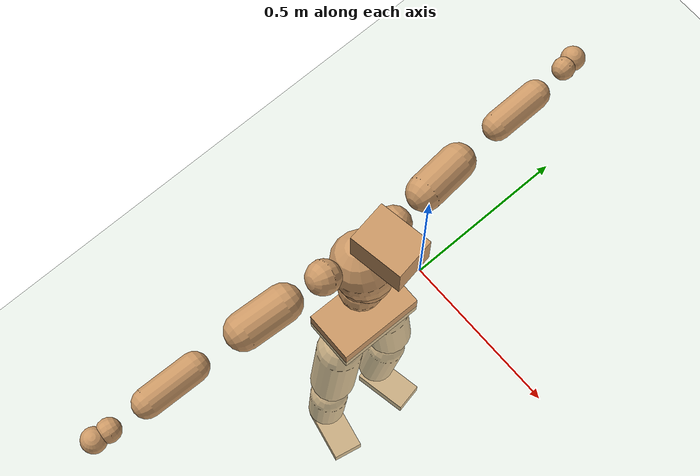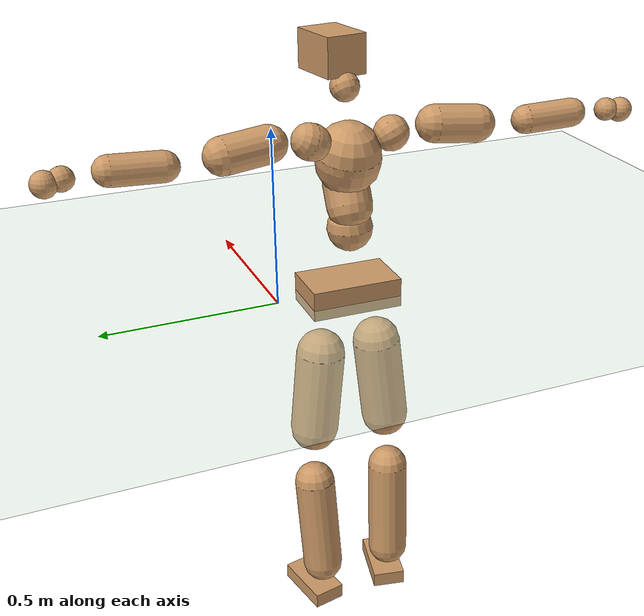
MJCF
<mujoco model="humanoid">
  <compiler coordinate="local" angle="radian"/>
  <default>
    <joint damping="0.0" armature="0.01" stiffness="0.0" limited="true"/>
    <geom conaffinity="1" condim="3" contype="7" margin="0.001" rgba="0.8 0.6 .4 1"/>
  </default>
  <asset>
    <texture type="skybox" builtin="gradient" rgb1=".4 .5 .6" rgb2="0 0 0" width="100" height="100"/>
    <texture builtin="flat" height="1278" mark="cross" markrgb="1 1 1" name="texgeom" random="0.01" rgb1="0.8 0.6 0.4" rgb2="0.8 0.6 0.4" type="cube" width="127"/>
    <texture builtin="checker" height="100" name="texplane" rgb1="0 0 0" rgb2="0.8 0.8 0.8" type="2d" width="100"/>
    <material name="MatPlane" reflectance="0.5" shininess="1" specular="1" texrepeat="60 60" texture="texplane"/>
    <material name="geom" texture="texgeom" texuniform="true"/>
  </asset>
  <worldbody>
    <light cutoff="100" diffuse="1 1 1" dir="-0 0 -1.3" directional="true" exponent="1" pos="0 0 1.3" specular=".1 .1 .1"/>
    <geom conaffinity="1" condim="3" name="floor" pos="0 0 0" rgba="0.8 0.9 0.8 1" size="100 100 .2" type="plane" material="MatPlane"/>
    <body name="Pelvis" pos="0.002 -0.2089 0.0216">
      <freejoint name="Pelvis"/>
      <geom type="box" contype="1" conaffinity="1" density="5359.375208" pos="-0.0077 0.0001 -0.0135" size="0.0783 0.131 0.0419" quat="1.0000 0.0000 0.0000 -0.0074" name="Pelvis"/>
      <body name="L_Hip" pos="-0.0157 0.0801 -0.0974">
        <joint name="L_Hip_x" type="hinge" pos="0 0 0" axis="1 0 0" stiffness="1600" damping="160" armature="0.02" range="-180.0000 180.0000"/>
        <joint name="L_Hip_y" type="hinge" pos="0 0 0" axis="0 1 0" stiffness="1600" damping="160" armature="0.02" range="-180.0000 180.0000"/>
        <joint name="L_Hip_z" type="hinge" pos="0 0 0" axis="0 0 1" stiffness="1600" damping="160" armature="0.02" range="-180.0000 180.0000"/>
        <geom type="capsule" contype="1" conaffinity="1" density="2040.816327" size="0.0705" fromto="0.0004 0.0098 -0.1000 0.0012 0.0344 -0.3492" name="L_Hip"/>
        <body name="L_Knee" pos="0.0016 0.0442 -0.4492">
          <joint name="L_Knee_x" type="hinge" pos="0 0 0" axis="1 0 0" stiffness="1600" damping="160" armature="0.02" range="-180.0000 180.0000"/>
          <joint name="L_Knee_y" type="hinge" pos="0 0 0" axis="0 1 0" stiffness="1600" damping="160" armature="0.02" range="-180.0000 180.0000"/>
          <joint name="L_Knee_z" type="hinge" pos="0 0 0" axis="0 0 1" stiffness="1600" damping="160" armature="0.02" range="-180.0000 180.0000"/>
          <geom type="capsule" contype="1" conaffinity="1" density="1234.567901" size="0.0608" fromto="-0.0102 -0.0026 -0.0902 -0.0434 -0.0108 -0.3814" name="L_Knee"/>
          <body name="L_Ankle" pos="-0.0536 -0.0134 -0.4715">
            <joint name="L_Ankle_x" type="hinge" pos="0 0 0" axis="1 0 0" stiffness="1600" damping="160" armature="0.02" range="-180.0000 180.0000"/>
            <joint name="L_Ankle_y" type="hinge" pos="0 0 0" axis="0 1 0" stiffness="1600" damping="160" armature="0.02" range="-180.0000 180.0000"/>
            <joint name="L_Ankle_z" type="hinge" pos="0 0 0" axis="0 0 1" stiffness="1600" damping="160" armature="0.02" range="-180.0000 180.0000"/>
            <geom type="box" contype="1" conaffinity="1" density="999.999941" pos="0.0654 0.0128 -0.0322" size="0.0922 0.0479 0.0233" quat="0.9953 0.0000 0.0000 0.0967" name="L_Ankle"/>
            <body name="L_Toe" pos="0.1307 0.0256 -0.0645">
              <joint name="L_Toe_x" type="hinge" pos="0 0 0" axis="1 0 0" stiffness="1000" damping="100" armature="0.02" range="-180.0000 180.0000"/>
              <joint name="L_Toe_y" type="hinge" pos="0 0 0" axis="0 1 0" stiffness="1000" damping="100" armature="0.02" range="-180.0000 180.0000"/>
              <joint name="L_Toe_z" type="hinge" pos="0 0 0" axis="0 0 1" stiffness="1000" damping="100" armature="0.02" range="-180.0000 180.0000"/>
              <geom type="box" contype="1" conaffinity="1" density="8967879.660564" pos="0.0000 0.0000 0.0329" size="0.0009 0.0024 0.0012" quat="0.9947 0.0000 0.0000 0.1025" name="L_Toe"/>
            </body>
          </body>
        </body>
      </body>
      <body name="R_Hip" pos="-0.0114 -0.0768 -0.0948">
        <joint name="R_Hip_x" type="hinge" pos="0 0 0" axis="1 0 0" stiffness="1600" damping="160" armature="0.02" range="-180.0000 180.0000"/>
        <joint name="R_Hip_y" type="hinge" pos="0 0 0" axis="0 1 0" stiffness="1600" damping="160" armature="0.02" range="-180.0000 180.0000"/>
        <joint name="R_Hip_z" type="hinge" pos="0 0 0" axis="0 0 1" stiffness="1600" damping="160" armature="0.02" range="-180.0000 180.0000"/>
        <geom type="capsule" contype="1" conaffinity="1" density="2040.816327" size="0.0694" fromto="-0.0006 -0.0110 -0.0988 -0.0020 -0.0401 -0.3595" name="R_Hip"/>
        <body name="R_Knee" pos="-0.0026 -0.0511 -0.4583">
          <joint name="R_Knee_x" type="hinge" pos="0 0 0" axis="1 0 0" stiffness="1600" damping="160" armature="0.02" range="-180.0000 180.0000"/>
          <joint name="R_Knee_y" type="hinge" pos="0 0 0" axis="0 1 0" stiffness="1600" damping="160" armature="0.02" range="-180.0000 180.0000"/>
          <joint name="R_Knee_z" type="hinge" pos="0 0 0" axis="0 0 1" stiffness="1600" damping="160" armature="0.02" range="-180.0000 180.0000"/>
          <geom type="capsule" contype="1" conaffinity="1" density="1234.567901" size="0.061" fromto="-0.0099 0.0033 -0.0904 -0.0417 0.0139 -0.3817" name="R_Knee"/>
          <body name="R_Ankle" pos="-0.0515 0.0172 -0.4721">
            <joint name="R_Ankle_x" type="hinge" pos="0 0 0" axis="1 0 0" stiffness="1600" damping="160" armature="0.02" range="-180.0000 180.0000"/>
            <joint name="R_Ankle_y" type="hinge" pos="0 0 0" axis="0 1 0" stiffness="1600" damping="160" armature="0.02" range="-180.0000 180.0000"/>
            <joint name="R_Ankle_z" type="hinge" pos="0 0 0" axis="0 0 1" stiffness="1600" damping="160" armature="0.02" range="-180.0000 180.0000"/>
            <geom type="box" contype="1" conaffinity="1" density="999.999989" pos="0.0672 -0.0141 -0.0281" size="0.0937 0.0493 0.023" quat="0.9947 0.0000 0.0000 -0.1030" name="R_Ankle"/>
            <body name="R_Toe" pos="0.1345 -0.0282 -0.0562">
              <joint name="R_Toe_x" type="hinge" pos="0 0 0" axis="1 0 0" stiffness="1000" damping="100" armature="0.02" range="-180.0000 180.0000"/>
              <joint name="R_Toe_y" type="hinge" pos="0 0 0" axis="0 1 0" stiffness="1000" damping="100" armature="0.02" range="-180.0000 180.0000"/>
              <joint name="R_Toe_z" type="hinge" pos="0 0 0" axis="0 0 1" stiffness="1000" damping="100" armature="0.02" range="-180.0000 180.0000"/>
              <geom type="box" contype="1" conaffinity="1" density="8814138.006525" pos="0.0000 0.0000 0.0305" size="0.0008 0.0024 0.0013" quat="0.9955 0.0000 0.0000 -0.0946" name="R_Toe"/>
            </body>
          </body>
        </body>
      </body>
      <body name="Torso" pos="-0.019 -0.0027 0.1111">
        <joint name="Torso_x" type="hinge" pos="0 0 0" axis="1 0 0" stiffness="2000" damping="200" armature="0.02" range="-180.0000 180.0000"/>
        <joint name="Torso_y" type="hinge" pos="0 0 0" axis="0 1 0" stiffness="2000" damping="200" armature="0.02" range="-180.0000 180.0000"/>
        <joint name="Torso_z" type="hinge" pos="0 0 0" axis="0 0 1" stiffness="2000" damping="200" armature="0.02" range="-180.0000 180.0000"/>
        <geom type="capsule" contype="1" conaffinity="1" density="2040.816327" size="0.0641" fromto="-0.0019 0.0015 0.0680 -0.0019 0.0016 0.0700" name="Torso"/>
        <body name="Spine" pos="-0.0038 0.0031 0.1381">
          <joint name="Spine_x" type="hinge" pos="0 0 0" axis="1 0 0" stiffness="2000" damping="200" armature="0.02" range="-180.0000 180.0000"/>
          <joint name="Spine_y" type="hinge" pos="0 0 0" axis="0 1 0" stiffness="2000" damping="200" armature="0.02" range="-180.0000 180.0000"/>
          <joint name="Spine_z" type="hinge" pos="0 0 0" axis="0 0 1" stiffness="2000" damping="200" armature="0.02" range="-180.0000 180.0000"/>
          <geom type="capsule" contype="1" conaffinity="1" density="2040.816327" size="0.0638" fromto="0.0288 0.0000 0.0569 -0.0028 -0.0000 -0.0055" name="Spine"/>
          <body name="Chest" pos="0.0261 0 0.0514">
            <joint name="Chest_x" type="hinge" pos="0 0 0" axis="1 0 0" stiffness="2000" damping="200" armature="0.02" range="-180.0000 180.0000"/>
            <joint name="Chest_y" type="hinge" pos="0 0 0" axis="0 1 0" stiffness="2000" damping="200" armature="0.02" range="-180.0000 180.0000"/>
            <joint name="Chest_z" type="hinge" pos="0 0 0" axis="0 0 1" stiffness="2000" damping="200" armature="0.02" range="-180.0000 180.0000"/>
            <geom type="capsule" contype="1" conaffinity="1" density="2040.816327" size="0.0901" fromto="-0.0201 -0.0011 0.0878 -0.0151 -0.0008 0.0661" name="Chest"/>
            <body name="Neck" pos="-0.0324 -0.0032 0.2253">
              <joint name="Neck_x" type="hinge" pos="0 0 0" axis="1 0 0" stiffness="1000" damping="100" armature="0.02" range="-180.0000 180.0000"/>
              <joint name="Neck_y" type="hinge" pos="0 0 0" axis="0 1 0" stiffness="1000" damping="100" armature="0.02" range="-180.0000 180.0000"/>
              <joint name="Neck_z" type="hinge" pos="0 0 0" axis="0 0 1" stiffness="1000" damping="100" armature="0.02" range="-180.0000 180.0000"/>
              <geom type="capsule" contype="1" conaffinity="1" density="1000" size="0.0399" fromto="0.0306 0.0041 0.0386 0.0318 0.0043 0.0402" name="Neck"/>
              <body name="Head" pos="0.0624 0.0084 0.0787">
                <joint name="Head_x" type="hinge" pos="0 0 0" axis="1 0 0" stiffness="1000" damping="100" armature="0.02" range="-180.0000 180.0000"/>
                <joint name="Head_y" type="hinge" pos="0 0 0" axis="0 1 0" stiffness="1000" damping="100" armature="0.02" range="-180.0000 180.0000"/>
                <joint name="Head_z" type="hinge" pos="0 0 0" axis="0 0 1" stiffness="1000" damping="100" armature="0.02" range="-180.0000 180.0000"/>
                <geom type="box" contype="1" conaffinity="1" density="2250.000057" pos="0.0322 0.0052 0.0404" size="0.0765 0.0579 0.053" quat="0.9968 0.0000 0.0000 0.0801" name="Head"/>
              </body>
            </body>
            <body name="L_Thorax" pos="-0.033 0.0704 0.119">
              <joint name="L_Thorax_x" type="hinge" pos="0 0 0" axis="1 0 0" stiffness="1000" damping="100" armature="0.02" range="-180.0000 180.0000"/>
              <joint name="L_Thorax_y" type="hinge" pos="0 0 0" axis="0 1 0" stiffness="1000" damping="100" armature="0.02" range="-180.0000 180.0000"/>
              <joint name="L_Thorax_z" type="hinge" pos="0 0 0" axis="0 0 1" stiffness="1000" damping="100" armature="0.02" range="-180.0000 180.0000"/>
              <geom type="capsule" contype="1" conaffinity="1" density="1000" size="0.0495" fromto="-0.0019 0.0444 0.0217 -0.0015 0.0353 0.0173" name="L_Thorax"/>
              <body name="L_Shoulder" pos="-0.0034 0.0797 0.039">
                <joint name="L_Shoulder_x" type="hinge" pos="0 0 0" axis="1 0 0" stiffness="1000" damping="100" armature="0.02" range="-720.0000 720.0000"/>
                <joint name="L_Shoulder_y" type="hinge" pos="0 0 0" axis="0 1 0" stiffness="1000" damping="100" armature="0.02" range="-720.0000 720.0000"/>
                <joint name="L_Shoulder_z" type="hinge" pos="0 0 0" axis="0 0 1" stiffness="1000" damping="100" armature="0.02" range="-720.0000 720.0000"/>
                <geom type="capsule" contype="1" conaffinity="1" density="1000" size="0.0508" fromto="-0.0083 0.0801 -0.0071 -0.0214 0.2057 -0.0181" name="L_Shoulder"/>
                <body name="L_Elbow" pos="-0.0297 0.2858 -0.0252">
                  <joint name="L_Elbow_x" type="hinge" pos="0 0 0" axis="1 0 0" stiffness="1000" damping="100" armature="0.02" range="-720.0000 720.0000"/>
                  <joint name="L_Elbow_y" type="hinge" pos="0 0 0" axis="0 1 0" stiffness="1000" damping="100" armature="0.02" range="-720.0000 720.0000"/>
                  <joint name="L_Elbow_z" type="hinge" pos="0 0 0" axis="0 0 1" stiffness="1000" damping="100" armature="0.02" range="-720.0000 720.0000"/>
                  <geom type="capsule" contype="1" conaffinity="1" density="1000" size="0.0398" fromto="-0.0000 0.0697 0.0034 -0.0000 0.2056 0.0101" name="L_Elbow"/>
                  <body name="L_Wrist" pos="0 0.2754 0.0135">
                    <joint name="L_Wrist_x" type="hinge" pos="0 0 0" axis="1 0 0" stiffness="600" damping="60" armature="0.02" range="-180.0000 180.0000"/>
                    <joint name="L_Wrist_y" type="hinge" pos="0 0 0" axis="0 1 0" stiffness="600" damping="60" armature="0.02" range="-180.0000 180.0000"/>
                    <joint name="L_Wrist_z" type="hinge" pos="0 0 0" axis="0 0 1" stiffness="600" damping="60" armature="0.02" range="-180.0000 180.0000"/>
                    <geom type="capsule" contype="1" conaffinity="1" density="1000" size="0.0312" fromto="-0.0070 0.0409 -0.0052 -0.0073 0.0429 -0.0055" name="L_Wrist"/>
                    <body name="L_Hand" pos="-0.0143 0.0838 -0.0107">
                      <joint name="L_Hand_x" type="hinge" pos="0 0 0" axis="1 0 0" stiffness="600" damping="60" armature="0.02" range="-180.0000 180.0000"/>
                      <joint name="L_Hand_y" type="hinge" pos="0 0 0" axis="0 1 0" stiffness="600" damping="60" armature="0.02" range="-180.0000 180.0000"/>
                      <joint name="L_Hand_z" type="hinge" pos="0 0 0" axis="0 0 1" stiffness="600" damping="60" armature="0.02" range="-180.0000 180.0000"/>
                      <geom type="sphere" contype="1" conaffinity="1" density="1000" size="0.0336" pos="0.0000 0.0000 0.0000" name="L_Hand"/>
                    </body>
                  </body>
                </body>
              </body>
            </body>
            <body name="R_Thorax" pos="-0.0402 -0.0728 0.1173">
              <joint name="R_Thorax_x" type="hinge" pos="0 0 0" axis="1 0 0" stiffness="1000" damping="100" armature="0.02" range="-180.0000 180.0000"/>
              <joint name="R_Thorax_y" type="hinge" pos="0 0 0" axis="0 1 0" stiffness="1000" damping="100" armature="0.02" range="-180.0000 180.0000"/>
              <joint name="R_Thorax_z" type="hinge" pos="0 0 0" axis="0 0 1" stiffness="1000" damping="100" armature="0.02" range="-180.0000 180.0000"/>
              <geom type="capsule" contype="1" conaffinity="1" density="1000" size="0.0483" fromto="-0.0024 -0.0433 0.0211 -0.0022 -0.0413 0.0201" name="R_Thorax"/>
              <body name="R_Shoulder" pos="-0.0046 -0.0847 0.0412">
                <joint name="R_Shoulder_x" type="hinge" pos="0 0 0" axis="1 0 0" stiffness="1000" damping="100" armature="0.02" range="-720.0000 720.0000"/>
                <joint name="R_Shoulder_y" type="hinge" pos="0 0 0" axis="0 1 0" stiffness="1000" damping="100" armature="0.02" range="-720.0000 720.0000"/>
                <joint name="R_Shoulder_z" type="hinge" pos="0 0 0" axis="0 0 1" stiffness="1000" damping="100" armature="0.02" range="-720.0000 720.0000"/>
                <geom type="capsule" contype="1" conaffinity="1" density="1000" size="0.0523" fromto="-0.0075 -0.0816 -0.0069 -0.0187 -0.2022 -0.0170" name="R_Shoulder"/>
                <body name="R_Elbow" pos="-0.0262 -0.2838 -0.0239">
                  <joint name="R_Elbow_x" type="hinge" pos="0 0 0" axis="1 0 0" stiffness="1000" damping="100" armature="0.02" range="-720.0000 720.0000"/>
                  <joint name="R_Elbow_y" type="hinge" pos="0 0 0" axis="0 1 0" stiffness="1000" damping="100" armature="0.02" range="-720.0000 720.0000"/>
                  <joint name="R_Elbow_z" type="hinge" pos="0 0 0" axis="0 0 1" stiffness="1000" damping="100" armature="0.02" range="-720.0000 720.0000"/>
                  <geom type="capsule" contype="1" conaffinity="1" density="1000" size="0.04" fromto="-0.0015 -0.0700 0.0021 -0.0047 -0.2162 0.0064" name="R_Elbow"/>
                  <body name="R_Wrist" pos="-0.0062 -0.2862 0.0084">
                    <joint name="R_Wrist_x" type="hinge" pos="0 0 0" axis="1 0 0" stiffness="600" damping="60" armature="0.02" range="-180.0000 180.0000"/>
                    <joint name="R_Wrist_y" type="hinge" pos="0 0 0" axis="0 1 0" stiffness="600" damping="60" armature="0.02" range="-180.0000 180.0000"/>
                    <joint name="R_Wrist_z" type="hinge" pos="0 0 0" axis="0 0 1" stiffness="600" damping="60" armature="0.02" range="-180.0000 180.0000"/>
                    <geom type="capsule" contype="1" conaffinity="1" density="1000" size="0.0323" fromto="-0.0055 -0.0420 -0.0039 -0.0058 -0.0440 -0.0041" name="R_Wrist"/>
                    <body name="R_Hand" pos="-0.0113 -0.086 -0.008">
                      <joint name="R_Hand_x" type="hinge" pos="0 0 0" axis="1 0 0" stiffness="600" damping="60" armature="0.02" range="-180.0000 180.0000"/>
                      <joint name="R_Hand_y" type="hinge" pos="0 0 0" axis="0 1 0" stiffness="600" damping="60" armature="0.02" range="-180.0000 180.0000"/>
                      <joint name="R_Hand_z" type="hinge" pos="0 0 0" axis="0 0 1" stiffness="600" damping="60" armature="0.02" range="-180.0000 180.0000"/>
                      <geom type="sphere" contype="1" conaffinity="1" density="1000" size="0.0343" pos="0.0000 0.0000 0.0000" name="R_Hand"/>
                    </body>
                  </body>
                </body>
              </body>
            </body>
          </body>
        </body>
      </body>
    </body>
  </worldbody>
  <actuator>
    <motor name="L_Hip_x" joint="L_Hip_x" gear="500"/>
    <motor name="L_Hip_y" joint="L_Hip_y" gear="500"/>
    <motor name="L_Hip_z" joint="L_Hip_z" gear="500"/>
    <motor name="L_Knee_x" joint="L_Knee_x" gear="500"/>
    <motor name="L_Knee_y" joint="L_Knee_y" gear="500"/>
    <motor name="L_Knee_z" joint="L_Knee_z" gear="500"/>
    <motor name="L_Ankle_x" joint="L_Ankle_x" gear="500"/>
    <motor name="L_Ankle_y" joint="L_Ankle_y" gear="500"/>
    <motor name="L_Ankle_z" joint="L_Ankle_z" gear="500"/>
    <motor name="L_Toe_x" joint="L_Toe_x" gear="500"/>
    <motor name="L_Toe_y" joint="L_Toe_y" gear="500"/>
    <motor name="L_Toe_z" joint="L_Toe_z" gear="500"/>
    <motor name="R_Hip_x" joint="R_Hip_x" gear="500"/>
    <motor name="R_Hip_y" joint="R_Hip_y" gear="500"/>
    <motor name="R_Hip_z" joint="R_Hip_z" gear="500"/>
    <motor name="R_Knee_x" joint="R_Knee_x" gear="500"/>
    <motor name="R_Knee_y" joint="R_Knee_y" gear="500"/>
    <motor name="R_Knee_z" joint="R_Knee_z" gear="500"/>
    <motor name="R_Ankle_x" joint="R_Ankle_x" gear="500"/>
    <motor name="R_Ankle_y" joint="R_Ankle_y" gear="500"/>
    <motor name="R_Ankle_z" joint="R_Ankle_z" gear="500"/>
    <motor name="R_Toe_x" joint="R_Toe_x" gear="500"/>
    <motor name="R_Toe_y" joint="R_Toe_y" gear="500"/>
    <motor name="R_Toe_z" joint="R_Toe_z" gear="500"/>
    <motor name="Torso_x" joint="Torso_x" gear="500"/>
    <motor name="Torso_y" joint="Torso_y" gear="500"/>
    <motor name="Torso_z" joint="Torso_z" gear="500"/>
    <motor name="Spine_x" joint="Spine_x" gear="500"/>
    <motor name="Spine_y" joint="Spine_y" gear="500"/>
    <motor name="Spine_z" joint="Spine_z" gear="500"/>
    <motor name="Chest_x" joint="Chest_x" gear="500"/>
    <motor name="Chest_y" joint="Chest_y" gear="500"/>
    <motor name="Chest_z" joint="Chest_z" gear="500"/>
    <motor name="Neck_x" joint="Neck_x" gear="500"/>
    <motor name="Neck_y" joint="Neck_y" gear="500"/>
    <motor name="Neck_z" joint="Neck_z" gear="500"/>
    <motor name="Head_x" joint="Head_x" gear="500"/>
    <motor name="Head_y" joint="Head_y" gear="500"/>
    <motor name="Head_z" joint="Head_z" gear="500"/>
    <motor name="L_Thorax_x" joint="L_Thorax_x" gear="500"/>
    <motor name="L_Thorax_y" joint="L_Thorax_y" gear="500"/>
    <motor name="L_Thorax_z" joint="L_Thorax_z" gear="500"/>
    <motor name="L_Shoulder_x" joint="L_Shoulder_x" gear="500"/>
    <motor name="L_Shoulder_y" joint="L_Shoulder_y" gear="500"/>
    <motor name="L_Shoulder_z" joint="L_Shoulder_z" gear="500"/>
    <motor name="L_Elbow_x" joint="L_Elbow_x" gear="500"/>
    <motor name="L_Elbow_y" joint="L_Elbow_y" gear="500"/>
    <motor name="L_Elbow_z" joint="L_Elbow_z" gear="500"/>
    <motor name="L_Wrist_x" joint="L_Wrist_x" gear="500"/>
    <motor name="L_Wrist_y" joint="L_Wrist_y" gear="500"/>
    <motor name="L_Wrist_z" joint="L_Wrist_z" gear="500"/>
    <motor name="L_Hand_x" joint="L_Hand_x" gear="500"/>
    <motor name="L_Hand_y" joint="L_Hand_y" gear="500"/>
    <motor name="L_Hand_z" joint="L_Hand_z" gear="500"/>
    <motor name="R_Thorax_x" joint="R_Thorax_x" gear="500"/>
    <motor name="R_Thorax_y" joint="R_Thorax_y" gear="500"/>
    <motor name="R_Thorax_z" joint="R_Thorax_z" gear="500"/>
    <motor name="R_Shoulder_x" joint="R_Shoulder_x" gear="500"/>
    <motor name="R_Shoulder_y" joint="R_Shoulder_y" gear="500"/>
    <motor name="R_Shoulder_z" joint="R_Shoulder_z" gear="500"/>
    <motor name="R_Elbow_x" joint="R_Elbow_x" gear="500"/>
    <motor name="R_Elbow_y" joint="R_Elbow_y" gear="500"/>
    <motor name="R_Elbow_z" joint="R_Elbow_z" gear="500"/>
    <motor name="R_Wrist_x" joint="R_Wrist_x" gear="500"/>
    <motor name="R_Wrist_y" joint="R_Wrist_y" gear="500"/>
    <motor name="R_Wrist_z" joint="R_Wrist_z" gear="500"/>
    <motor name="R_Hand_x" joint="R_Hand_x" gear="500"/>
    <motor name="R_Hand_y" joint="R_Hand_y" gear="500"/>
    <motor name="R_Hand_z" joint="R_Hand_z" gear="500"/>
  </actuator>
  <contact>
    <exclude body1="Torso" body2="Chest"/>
    <exclude body1="Head" body2="Chest"/>
    <exclude body1="R_Knee" body2="R_Toe"/>
    <exclude body1="R_Knee" body2="L_Ankle"/>
    <exclude body1="R_Knee" body2="L_Toe"/>
    <exclude body1="L_Knee" body2="L_Toe"/>
    <exclude body1="L_Knee" body2="R_Ankle"/>
    <exclude body1="L_Knee" body2="R_Toe"/>
    <exclude body1="L_Shoulder" body2="Chest"/>
    <exclude body1="R_Shoulder" body2="Chest"/>
  </contact>
  <sensor/>
  <size njmax="700" nconmax="700"/>
</mujoco>
